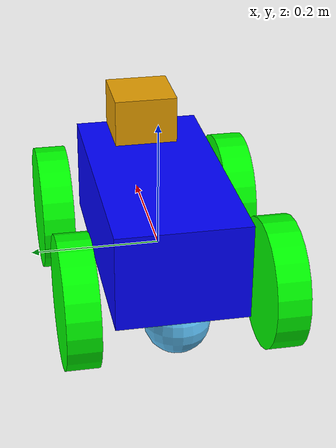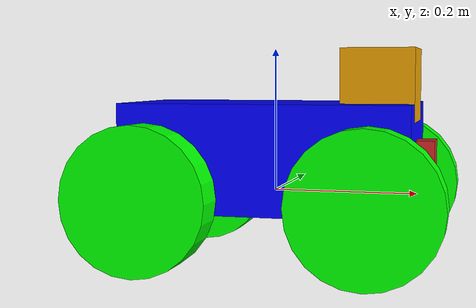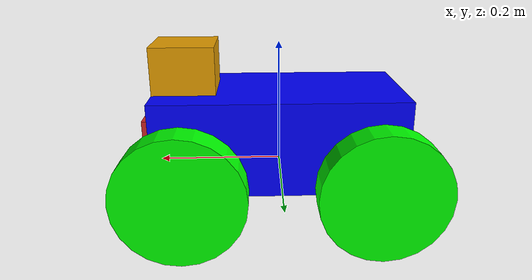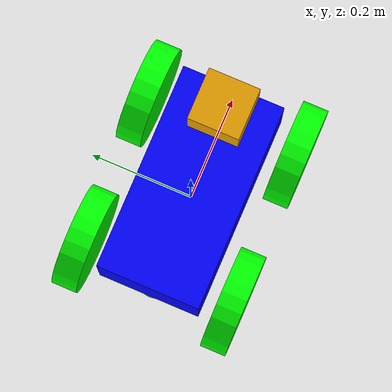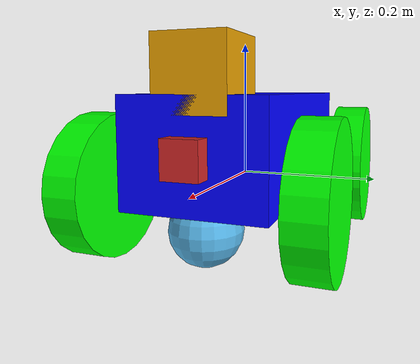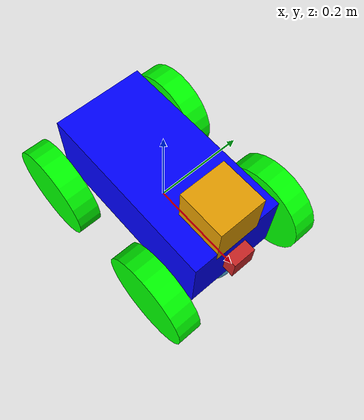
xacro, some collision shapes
<?xml version='1.0'?>

<!-- my Robot -->

<robot name="my_bot" xmlns:xacro="http://www.ros.org/wiki/xacro">

  <!-- import URDF files -->

  <xacro:include filename="$(find my_bot)/urdf/common_properties.xacro"/>
  <xacro:include filename="$(find my_bot)/urdf/mybot.gazebo" />

  <!-- robot_footprint -->

  <link name="robot_footprint"></link>

  <joint name="robot_footprint_joint" type="fixed">
    <origin xyz="0 0 0" rpy="0 0 0" />
    <parent link="robot_footprint"/>
    <child link="chassis" />
  </joint>

  <!-- chassis -->

  <link name='chassis'>
    <pose>0 0 0.1 0 0 0</pose>

    <visual name='chassis_visual'>
      <origin xyz="0 0 0.05" rpy=" 0 0 0"/>
      <geometry>
        <box size=".4 .2 .15"/>
      </geometry>
      <material name="blue"/>
    </visual>

    <inertial>
      <mass value="15.0"/>
      <origin xyz="0.0 0 0" rpy=" 0 0 0"/>
      <inertia
          ixx="0.1" ixy="0" ixz="0"
          iyy="0.1" iyz="0"
          izz="0.1"
      />
    </inertial>

    <collision name='chassis_collision'>
      <origin xyz="0 0 0.05" rpy=" 0 0 0"/>
      <geometry>
        <box size=".4 .2 .15"/>
      </geometry>
    </collision>

    <!-- back_caster_collision -->

    <visual name='back_caster_visual'>
      <origin xyz="-0.15 0 -0.05" rpy=" 0 0 0"/>
      <geometry>
        <sphere radius="0.05"/>
      </geometry>
    </visual>

    <collision name='back_caster_collision'>
      <origin xyz="-0.15 0 -0.05" rpy=" 0 0 0"/>
      <geometry>
        <sphere radius="0.0499"/>
      </geometry>
      <surface>
        <friction>
          <ode>
            <mu>0</mu>
            <mu2>0</mu2>
            <slip1>1.0</slip1>
            <slip2>1.0</slip2>
          </ode>
        </friction>
      </surface>
    </collision>

    <!-- front_caster_collision -->

    <visual name='front_caster_visual'>
      <origin xyz="0.15 0 -0.05" rpy=" 0 0 0"/>
      <geometry>
        <sphere radius="0.05"/>
      </geometry>
    </visual>

    <collision name='front_caster_collision'>
      <origin xyz="0.15 0 -0.05" rpy=" 0 0 0"/>
      <geometry>
        <sphere radius="0.0499"/>
      </geometry>
      <surface>
        <friction>
          <ode>
            <mu>0</mu>
            <mu2>0</mu2>
            <slip1>1.0</slip1>
            <slip2>1.0</slip2>
          </ode>
        </friction>
      </surface>
    </collision>

  </link>

  <!-- front_left_wheel -->

  <link name="front_left_wheel">

    <visual name='front_left_wheel_visual'>
      <origin xyz="0 0 0" rpy=" 0 1.5707 1.5707"/>
      <geometry>
        <cylinder radius="0.1" length="0.05"/>
      </geometry>
      <material name="green"/>
    </visual>

   <collision name='front_left_wheel_collision'>
      <origin xyz="0 0 0" rpy=" 0 1.5707 1.5707"/>
      <geometry>
        <cylinder radius="0.1" length="0.05"/>
      </geometry>
   </collision>

    <inertial>
      <mass value="5.0"/>
      <origin xyz="0.0 0 0" rpy=" 0 1.5707 1.5707"/>
      <inertia
          ixx="0.1" ixy="0" ixz="0"
          iyy="0.1" iyz="0"
          izz="0.1"
      />
    </inertial>

  </link>

  <joint type="continuous" name="front_left_wheel_joint">
      <origin xyz="0.15 0.15 0" rpy="0 0 0"/>
      <child link="front_left_wheel"/>
      <parent link="chassis"/>
      <axis xyz="0 1 0" rpy="0 0 0"/>
      <limit effort="10000" velocity="1000"/>
      <joint_properties damping="1.0" friction="1.0"/>
  </joint>

  <!-- front_right_wheel -->

  <link name="front_right_wheel">

    <visual name='front_right_wheel_visual'>
      <origin xyz="0 0 0" rpy=" 0 1.5707 1.5707"/>
      <geometry>
        <cylinder radius="0.1" length="0.05"/>
      </geometry>
      <material name="green"/>
    </visual>

    <collision name='front_right_wheel_collision'>
      <origin xyz="0 0 0" rpy=" 0 1.5707 1.5707"/>
      <geometry>
        <cylinder radius="0.1" length="0.05"/>
      </geometry>
    </collision>

    <inertial>
      <mass value="5.0"/>
      <origin xyz="0.0 0 0" rpy=" 0 1.5707 1.5707"/>
      <inertia
          ixx="0.1" ixy="0" ixz="0"
          iyy="0.1" iyz="0"
          izz="0.1"
      />
    </inertial>

  </link>

  <joint type="continuous" name="front_right_wheel_joint">
      <origin xyz="0.15 -0.15 0" rpy="0 0 0"/>
      <child link="front_right_wheel"/>
      <parent link="chassis"/>
      <axis xyz="0 1 0" rpy="0 0 0"/>
      <limit effort="10000" velocity="1000"/>
      <joint_properties damping="1.0" friction="1.0"/>
  </joint>

  <!-- back_left_wheel -->

  <link name="back_left_wheel">

    <visual name='back_left_wheel_visual'>
      <origin xyz="0 0 0" rpy=" 0 1.5707 1.5707"/>
      <geometry>
        <cylinder radius="0.1" length="0.05"/>
      </geometry>
      <material name="green"/>
    </visual>

   <collision name='back_left_wheel_collision'>
      <origin xyz="0 0 0" rpy=" 0 1.5707 1.5707"/>
      <geometry>
        <cylinder radius="0.1" length="0.05"/>
      </geometry>
   </collision>

    <inertial>
      <mass value="5.0"/>
      <origin xyz="0.0 0 0" rpy=" 0 1.5707 1.5707"/>
      <inertia
          ixx="0.1" ixy="0" ixz="0"
          iyy="0.1" iyz="0"
          izz="0.1"
      />
    </inertial>

  </link>

  <joint type="continuous" name="back_left_wheel_joint">
      <origin xyz="-0.15 0.15 0" rpy="0 0 0"/>
      <child link="back_left_wheel"/>
      <parent link="chassis"/>
      <axis xyz="0 1 0" rpy="0 0 0"/>
      <limit effort="10000" velocity="1000"/>
      <joint_properties damping="1.0" friction="1.0"/>
  </joint>

  <!-- back_right_wheel -->

  <link name="back_right_wheel">

    <visual name='back_right_wheel_visual'>
      <origin xyz="0 0 0" rpy=" 0 1.5707 1.5707"/>
      <geometry>
        <cylinder radius="0.1" length="0.05"/>
      </geometry>
      <material name="green"/>
    </visual>

    <collision name='back_right_wheel_collision'>
      <origin xyz="0 0 0" rpy=" 0 1.5707 1.5707"/>
      <geometry>
        <cylinder radius="0.1" length="0.05"/>
      </geometry>
    </collision>

    <inertial>
      <mass value="5.0"/>
      <origin xyz="0.0 0 0" rpy=" 0 1.5707 1.5707"/>
      <inertia
          ixx="0.1" ixy="0" ixz="0"
          iyy="0.1" iyz="0"
          izz="0.1"
      />
    </inertial>

  </link>

  <joint type="continuous" name="back_right_wheel_joint">
      <origin xyz="-0.15 -0.15 0" rpy="0 0 0"/>
      <child link="back_right_wheel"/>
      <parent link="chassis"/>
      <axis xyz="0 1 0" rpy="0 0 0"/>
      <limit effort="10000" velocity="1000"/>
      <joint_properties damping="1.0" friction="1.0"/>
  </joint>

  <!-- camera -->

  <link name="camera">

    <visual name='camera_visual'>
      <origin xyz="0 0 0.05" rpy=" 0 0 0"/>
      <geometry>
        <box size="0.05 0.05 0.05"/>
      </geometry>
    </visual>

   <collision name='camera_collision'>
      <origin xyz="0 0 0" rpy=" 0 0 0"/>
      <geometry>
        <box size="0.05 0.05 0.05"/>
      </geometry>
    </collision>

    <inertial>
      <mass value="0.1"/>
      <origin xyz="0 0 0" rpy=" 0 0 0"/>
      <inertia
          ixx="1e-6" ixy="0" ixz="0"
          iyy="1e-6" iyz="0"
          izz="1e-6"
      />
    </inertial>

  </link>

  <joint type="fixed" name="camera_joint">
      <origin xyz="0.2 0 0" rpy="0 0 0"/>
      <child link="camera"/>
      <parent link="chassis"/>
      <axis xyz="1 0 0" rpy="0 0 0"/>
  </joint>

  <link name = "camera_rgbd_frame"></link>

  <joint type="fixed" name="camera_rgbd_joint">
      <origin xyz="0.0 0 0" rpy="-${pi/2} 0 -${pi/2}"/>
      <child link="camera_rgbd_frame"/>
      <parent link="camera"/>

  </joint>

  <!-- hokuyo laser range finder -->

  <link name="hokuyo">

    <visual name='hokuyo_visual'>
      <origin xyz="0 0 0" rpy=" 0 0 0"/>
      <geometry>
        <mesh filename="package://my_bot/meshes/hokuyo.dae"/>
      </geometry>
    </visual>

    <collision name='hokuyo_collision'>
      <origin xyz="0 0 0" rpy=" 0 0 0"/>
      <geometry>
        <box size="0.1 0.1 0.1"/>
      </geometry>
    </collision>

    <inertial>
      <mass value="0.1"/>
      <origin xyz="0 0 0" rpy=" 0 0 0"/>
      <inertia
          ixx="1e-6" ixy="0" ixz="0"
          iyy="1e-6" iyz="0"
          izz="1e-6"
      />
    </inertial>

  </link>

  <joint type="fixed" name="hokuyo_joint">
      <origin xyz="0.15 0 0.15" rpy="0 0 0"/>
      <child link="hokuyo"/>
      <parent link="chassis"/>
      <axis xyz="1 0 0" rpy="0 0 0"/>
  </joint>

</robot>

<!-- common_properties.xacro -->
<robot name="my_bot" xmlns:xacro="http://www.ros.org/wiki/xacro">

  <material name="black">
      <color rgba="0.0 0.0 0.0 1.0"/>
  </material>

  <material name="blue">
    <color rgba="0.0 0.0 1.0 1.0"/>
  </material>

  <material name="green">
    <color rgba="0.0 1.0 0.0 1.0"/>
  </material>

  <material name="red">
    <color rgba="1.0 0.0 0.0 1.0"/>
  </material>

</robot>
